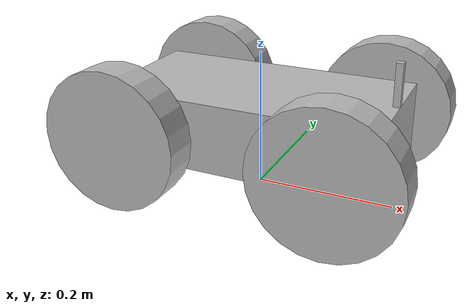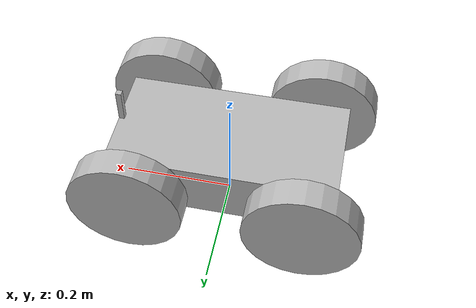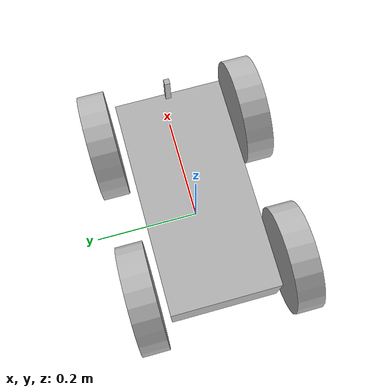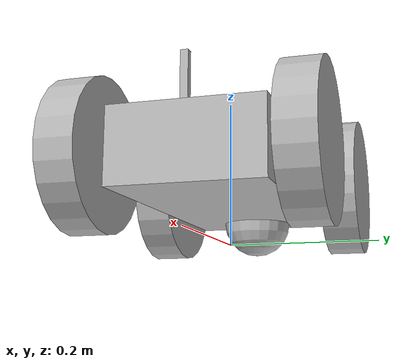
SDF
<?xml version="1.0"?>
<sdf version="1.6">
    <model name="capra_robot">
        <!-- Set model ignored or not by physics engine -->
        <static>false</static>

        <link name='base_link'>
            <pose>0 0 .1 0 0 0</pose>

            <collision name='collision'>
                <geometry>
                    <box>
                        <size>.4 .2 .1</size>
                    </box>
                </geometry>
            </collision>

            <visual name='visual'>
                <geometry>
                    <box>
                        <size>.4 .2 .1</size>
                    </box>
                </geometry>
            </visual>

            <collision name='caster_collision'>
                <pose>-0.15 0 -0.05 0 0 0</pose>

                <geometry>
                    <sphere>
                        <radius>.05</radius>
                    </sphere>
                </geometry>

                <surface>
                    <friction>
                        <ode>
                            <mu>0</mu>
                            <mu2>0</mu2>
                            <slip1>1.0</slip1>
                            <slip2>1.0</slip2>
                        </ode>
                    </friction>
                </surface>
            </collision>

            <visual name='caster_visual'>
                <pose>-0.15 0 -0.05 0 0 0</pose>

                <geometry>
                    <sphere>
                        <radius>.05</radius>
                    </sphere>
                </geometry>
            </visual>
        </link>

        <link name="laser">
            <pose>0.195 0 0.16 0 0 0</pose>

            <collision name="collision">
                <geometry>
                    <box>
                        <size>.01 .01 .1</size>
                    </box>
                </geometry>
            </collision>

            <visual name='visual'>
                <geometry>
                    <box>
                        <size>.01 .01 .1</size>
                    </box>
                </geometry>
            </visual>

            <sensor name='LIDAR' type='ray'>
                <visualize>1</visualize>
                <update_rate>30</update_rate>
                <ray>
                    <scan>
                        <horizontal>
                        <samples>540</samples>
                        <resolution>1</resolution>
                        <min_angle>-2.3562</min_angle>
                        <max_angle>2.3562</max_angle>
                        </horizontal>
                        <vertical>
                        <samples>1</samples>
                        <min_angle>0</min_angle>
                        <max_angle>0</max_angle>
                        </vertical>
                    </scan>
                    <range>
                        <min>0.2</min>
                        <max>4</max>
                        <resolution>0.1</resolution>
                    </range>
                    <noise>
                        <type>gaussian</type>
                        <mean>0</mean>
                        <stddev>0.01</stddev>
                    </noise>
                </ray>

                <plugin name='laser' filename='libgazebo_ros_laser.so'>
                    <topicName>/LaserScan</topicName>
                    <frameName>laser</frameName>
                    <robotNamespace>/capra_simulation/</robotNamespace>
                </plugin>

                <always_on>1</always_on>
                <update_rate>5</update_rate>
                <visualize>1</visualize>
                <pose>0 0 0.05 0 0 0</pose>
            </sensor>
        </link>

        <joint type="fixed" name="sensor_tower">
            <pose>0 0 0 0 0 0</pose>

            <child>laser</child>
            <parent>base_link</parent>

            <axis>
                <xyz>0 0 1</xyz>
            </axis>
        </joint>

        <link name="right_wheel_back">
            <pose>-0.15 -0.14 0.1 0 1.5707 1.5707</pose>

            <collision name="collision">
                <geometry>
                    <cylinder>
                        <radius>.1</radius>
                        <length>.05</length>
                    </cylinder>
                </geometry>
            </collision>

            <visual name="visual">
                <geometry>
                    <cylinder>
                        <radius>.1</radius>
                        <length>.05</length>
                    </cylinder>
                </geometry>
            </visual>
        </link>

        <link name="left_wheel_back">
            <pose>-0.15 0.14 0.1 0 1.5707 1.5707</pose>

            <collision name="collision">
                <geometry>
                    <cylinder>
                    <radius>.1</radius>
                    <length>.05</length>
                    </cylinder>
                </geometry>
            </collision>

            <visual name="visual">
                <geometry>
                    <cylinder>
                    <radius>.1</radius>
                    <length>.05</length>
                    </cylinder>
                </geometry>
            </visual>
        </link>

        <joint type="revolute" name="right_wheel_front_hinge">
            <pose>0 0 -0.03 0 0 0</pose>

            <child>right_wheel_front</child>
            <parent>base_link</parent>

            <axis>
                <xyz>0 1 0</xyz>
            </axis>
        </joint>

        <joint type="revolute" name="left_wheel_front_hinge">
            <pose>0 0 0.03 0 0 0</pose>

            <child>left_wheel_front</child>
            <parent>base_link</parent>

            <axis>
                <xyz>0 1 0</xyz>
            </axis>
        </joint>

        <link name="left_wheel_front">
            <pose>0.15 0.14 0.1 0 1.5707 1.5707</pose>

            <collision name="collision">
                <geometry>
                    <cylinder>
                        <radius>.1</radius>
                        <length>.05</length>
                    </cylinder>
                </geometry>
            </collision>

            <visual name="visual">
                <geometry>
                    <cylinder>
                        <radius>.1</radius>
                        <length>.05</length>
                    </cylinder>
                </geometry>
            </visual>
        </link>

        <link name="right_wheel_front">
            <pose>0.15 -0.14 0.1 0 1.5707 1.5707</pose>

            <collision name="collision">
                <geometry>
                    <cylinder>
                    <radius>.1</radius>
                    <length>.05</length>
                    </cylinder>
                </geometry>
            </collision>

            <visual name="visual">
                <geometry>
                    <cylinder>
                    <radius>.1</radius>
                    <length>.05</length>
                    </cylinder>
                </geometry>
            </visual>
        </link>

        <joint type="revolute" name="right_wheel_back_hinge">
            <pose>0 0 -0.03 0 0 0</pose>

            <child>right_wheel_back</child>
            <parent>base_link</parent>

            <axis>
                <xyz>0 1 0</xyz>
            </axis>
        </joint>

        <joint type="revolute" name="left_wheel_back_hinge">
            <pose>0 0 0.03 0 0 0</pose>

            <child>left_wheel_back</child>
            <parent>base_link</parent>

            <axis>
                <xyz>0 1 0</xyz>
            </axis>
        </joint>

    </model>
</sdf>
